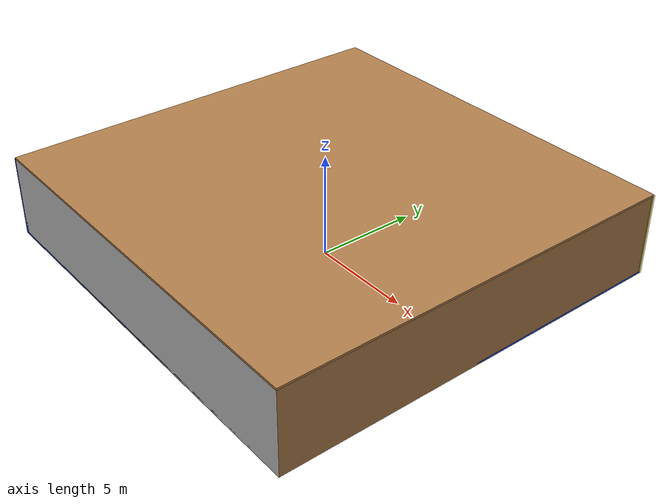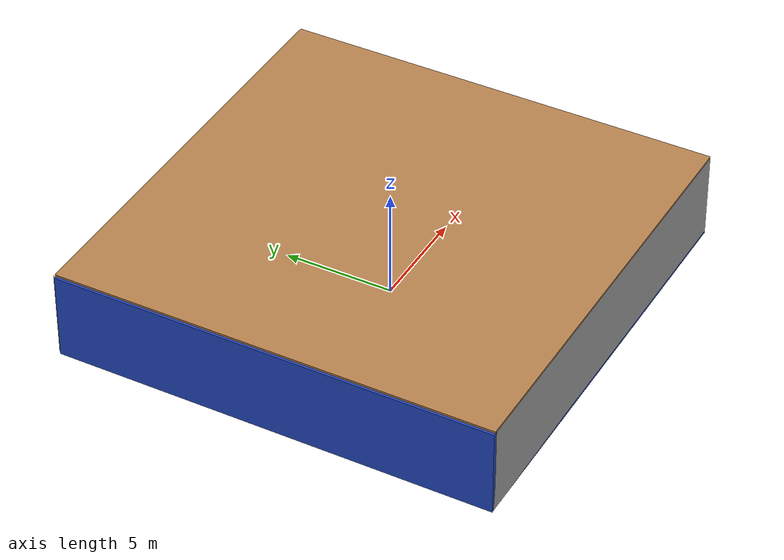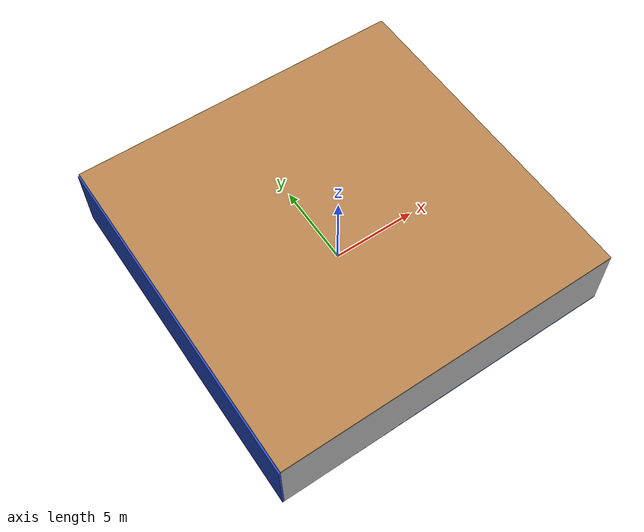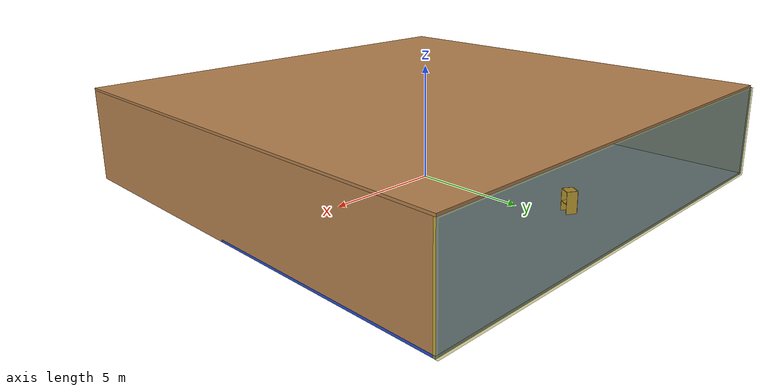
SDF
<sdf version="1.4">
 <world name="default">
  <physics type="ode">
   <max_step_size>0.001</max_step_size>
   <real_time_factor>1</real_time_factor>
   <real_time_update_rate>1000</real_time_update_rate>
   <gravity>0 0 -9.8</gravity>
  </physics>
  <scene><ambient>0.4 0.4 0.4 1</ambient><background>0.7 0.7 0.7 1</background><shadows>1</shadows></scene>
  <model name="Surrounding">
   <static>1</static>
   <link name="Ceiling">
    <collision name="Ceiling_Collision"><geometry><box><size>20 20 0.1</size></box></geometry></collision>
    <visual name="Ceiling_Visual">
     <geometry><box><size>20 20 0.1</size></box></geometry>
     <material>
      <script><uri>file://media/materials/scripts/gazebo.material</uri><name>Gazebo/WoodFloor</name></script>
     </material>
    </visual>
    <pose>0 0 4.05 0 0 0</pose>
   </link>
   <link name="Wall_South">
    <collision name="Wall_South_Collision">
     <geometry><box><size>20 0 4</size></box></geometry>
     <pose>0 0 2 0 -0 0</pose>
    </collision>
    <visual name="Wall_South_Visual">
     <pose>0 0 2 0 -0 0</pose>
     <geometry><box><size>20 0 4</size></box></geometry>
     <material>
      <script><uri>file://media/materials/scripts/gazebo.material</uri><name>Gazebo/LightOn</name></script>
     </material>
    </visual>
    <velocity_decay><linear>0</linear><angular>0</angular></velocity_decay>
    <pose>0 -10 0 0 -0 0</pose>
   </link>
   <link name="Wall_East">
    <collision name="Wall_21_Collision">
     <geometry><box><size>20 0 4</size></box></geometry>
     <pose>0 0 2 0 -0 0</pose>
    </collision>
    <visual name="Wall_21_Visual">
     <pose>0 0 2 0 -0 0</pose>
     <geometry><box><size>20 0 4</size></box></geometry>
     <material>
      <script><uri>file://media/materials/scripts/gazebo.material</uri><name>Gazebo/WoodPallet</name></script>
     </material>
    </visual>
    <velocity_decay><linear>0</linear><angular>0</angular></velocity_decay>
    <pose>10 0 0 0 -0 1.5708</pose>
   </link>
   <link name="Wall_North">
    <collision name="Wall_22_Collision">
     <geometry><box><size>20 0.2 4</size></box></geometry>
     <pose>0 0 2 0 -0 0</pose>
    </collision>
    <visual name="Wall_22_Visual">
     <pose>0 0 2 0 -0 0</pose>
     <geometry><box><size>20 0.2 4</size></box></geometry>
     <material>
      <script>
       <uri>file://media/materials/scripts/gazebo.material</uri>
       <name>Gazebo/YellowTransparent</name>
      </script>
     </material>
    </visual>
    <velocity_decay><linear>0</linear><angular>0</angular></velocity_decay>
    <pose>0 10 0 0 -0 0</pose>
   </link>
   <link name="Wall_West">
    <collision name="Wall_23_Collision">
     <geometry><box><size>20 0.2 4</size></box></geometry>
     <pose>0 0 2 0 -0 0</pose>
    </collision>
    <visual name="Wall_23_Visual">
     <pose>0 0 2 0 -0 0</pose>
     <geometry><box><size>20 0.2 4</size></box></geometry>
     <material>
      <script><uri>file://media/materials/scripts/gazebo.material</uri><name>Gazebo/BlueLaser</name></script>
     </material>
    </visual>
    <velocity_decay><linear>0</linear><angular>0</angular></velocity_decay>
    <pose>-10 0 0 0 0 -1.5708</pose>
   </link>
   <link name="Ground_link">
    <collision name="collision">
     <pose>0 0 .05 0 -0 0</pose>
     <geometry><box><size>20 20 0.1</size></box></geometry>
    </collision>
    <visual name="visual">
     <pose>0 0 .05 0 -0 0</pose>
     <geometry><box><size>20 20 0.1</size></box></geometry>
     <material>
      <script><uri>file://media/materials/scripts/gazebo.material</uri><name>Gazebo/Blue</name></script>
     </material>
    </visual>
   </link>
   <static>1</static>
  </model>
  <spherical_coordinates>
   <surface_model>EARTH_WGS84</surface_model>
   <latitude_deg>0</latitude_deg>
   <longitude_deg>0</longitude_deg>
   <elevation>0</elevation>
   <heading_deg>0</heading_deg>
  </spherical_coordinates>
  <light name="lightball_0" type="diffuse">
   <diffuse>0.8 0.8 0.8 1</diffuse>
   <specular>0.2 0.2 0.2 1</specular>
   <attenuation>
    <range>100</range>
    <constant>0.7</constant>
    <linear>0.01</linear>
    <quadratic>0.001</quadratic>
   </attenuation>
   <direction>-0.5 0.1 -0.9</direction>
   <pose>7.82040198628 5.0997853012 1.39799474451 0 0 0</pose>
  </light>
  <light name="lightball_1" type="diffuse">
   <diffuse>0.8 0.8 0.8 1</diffuse>
   <specular>0.2 0.2 0.2 1</specular>
   <attenuation>
    <range>100</range>
    <constant>0.7</constant>
    <linear>0.01</linear>
    <quadratic>0.001</quadratic>
   </attenuation>
   <direction>-0.5 0.1 -0.9</direction>
   <pose>3.37415637577 -9.47362480811 2.39657362583 0 0 0</pose>
  </light>
  <light name="lightball_2" type="diffuse">
   <diffuse>0.8 0.8 0.8 1</diffuse>
   <specular>0.2 0.2 0.2 1</specular>
   <attenuation>
    <range>100</range>
    <constant>0.7</constant>
    <linear>0.01</linear>
    <quadratic>0.001</quadratic>
   </attenuation>
   <direction>-0.5 0.1 -0.9</direction>
   <pose>4.05631921946 8.17326193442 3.49013375007 0 0 0</pose>
  </light>
  <light name="lightball_3" type="diffuse">
   <diffuse>0.8 0.8 0.8 1</diffuse>
   <specular>0.2 0.2 0.2 1</specular>
   <attenuation>
    <range>100</range>
    <constant>0.7</constant>
    <linear>0.01</linear>
    <quadratic>0.001</quadratic>
   </attenuation>
   <direction>-0.5 0.1 -0.9</direction>
   <pose>-2.88832593891 1.34501631802 0.943433848146 0 0 0</pose>
  </light>
  <light name="lightball_4" type="diffuse">
   <diffuse>0.8 0.8 0.8 1</diffuse>
   <specular>0.2 0.2 0.2 1</specular>
   <attenuation>
    <range>100</range>
    <constant>0.7</constant>
    <linear>0.01</linear>
    <quadratic>0.001</quadratic>
   </attenuation>
   <direction>-0.5 0.1 -0.9</direction>
   <pose>-2.27123497824 -4.96074535405 1.46884039494 0 0 0</pose>
  </light>
  <light name="lightball_5" type="diffuse">
   <diffuse>0.8 0.8 0.8 1</diffuse>
   <specular>0.2 0.2 0.2 1</specular>
   <attenuation>
    <range>100</range>
    <constant>0.7</constant>
    <linear>0.01</linear>
    <quadratic>0.001</quadratic>
   </attenuation>
   <direction>-0.5 0.1 -0.9</direction>
   <pose>0.531985224738 6.72646652003 0.878693578647 0 0 0</pose>
  </light>
  <light name="lightball_6" type="diffuse">
   <diffuse>0.8 0.8 0.8 1</diffuse>
   <specular>0.2 0.2 0.2 1</specular>
   <attenuation>
    <range>100</range>
    <constant>0.7</constant>
    <linear>0.01</linear>
    <quadratic>0.001</quadratic>
   </attenuation>
   <direction>-0.5 0.1 -0.9</direction>
   <pose>-4.27765054908 3.39958266538 1.55656792101 0 0 0</pose>
  </light>
  <light name="lightball_7" type="diffuse">
   <diffuse>0.8 0.8 0.8 1</diffuse>
   <specular>0.2 0.2 0.2 1</specular>
   <attenuation>
    <range>100</range>
    <constant>0.7</constant>
    <linear>0.01</linear>
    <quadratic>0.001</quadratic>
   </attenuation>
   <direction>-0.5 0.1 -0.9</direction>
   <pose>5.96153026871 -9.98062341777 0.849986049636 0 0 0</pose>
  </light>
  <light name="lightball_8" type="diffuse">
   <diffuse>0.8 0.8 0.8 1</diffuse>
   <specular>0.2 0.2 0.2 1</specular>
   <attenuation>
    <range>100</range>
    <constant>0.7</constant>
    <linear>0.01</linear>
    <quadratic>0.001</quadratic>
   </attenuation>
   <direction>-0.5 0.1 -0.9</direction>
   <pose>2.47729082593 4.980864068 2.58791521015 0 0 0</pose>
  </light>
  <light name="lightball_9" type="diffuse">
   <diffuse>0.8 0.8 0.8 1</diffuse>
   <specular>0.2 0.2 0.2 1</specular>
   <attenuation>
    <range>100</range>
    <constant>0.7</constant>
    <linear>0.01</linear>
    <quadratic>0.001</quadratic>
   </attenuation>
   <direction>-0.5 0.1 -0.9</direction>
   <pose>-7.39775136212 3.60275280047 2.79319492064 0 0 0</pose>
  </light>
  <light name="lightball_10" type="diffuse">
   <diffuse>0.8 0.8 0.8 1</diffuse>
   <specular>0.2 0.2 0.2 1</specular>
   <attenuation>
    <range>100</range>
    <constant>0.7</constant>
    <linear>0.01</linear>
    <quadratic>0.001</quadratic>
   </attenuation>
   <direction>-0.5 0.1 -0.9</direction>
   <pose>6.34162175936 1.15210031573 1.30530068303 0 0 0</pose>
  </light>
  <light name="lightball_11" type="diffuse">
   <diffuse>0.8 0.8 0.8 1</diffuse>
   <specular>0.2 0.2 0.2 1</specular>
   <attenuation>
    <range>100</range>
    <constant>0.7</constant>
    <linear>0.01</linear>
    <quadratic>0.001</quadratic>
   </attenuation>
   <direction>-0.5 0.1 -0.9</direction>
   <pose>-5.7167247983 6.28093835261 2.57435443521 0 0 0</pose>
  </light>
  <include>
   <uri>model://robocup_3Dsim_goal</uri>
   <pose>-6.69090245114 -7.8946372977 0 0 0 2.73383754116</pose>
  </include>
  <include><uri>model://cabinet</uri><pose>-0.704932289093 7.03622603673 0 0 0 2.59837538083</pose></include>
  <include>
   <uri>model://textured_shapes</uri>
   <pose>0.383699696396 -6.42506741628 0 0 0 1.39144872946</pose>
  </include>
  <include>
   <uri>model://construction_cone</uri>
   <pose>1.10362721183 -4.84087528664 0 0 0 2.29899054575</pose>
  </include>
  <include>
   <uri>model://textured_shapes</uri>
   <pose>7.11619925216 -4.2880513961 0 0 0 2.25361451329</pose>
  </include>
  <include><uri>model://cabinet</uri><pose>7.45203197757 -1.72708865706 0 0 0 2.69649284057</pose></include>
  <include><uri>model://cabinet</uri><pose>7.03427359474 1.31030261355 0 0 0 2.28539084544</pose></include>
 </world>
</sdf>

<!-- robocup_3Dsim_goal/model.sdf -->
<sdf version="1.5">
  <model name="robocup_3d_goal">
    <static>true</static>
    <link name="left_post">
      <pose>0 1.05 0.45 0 0 0</pose>
      <collision name="collision">
        <geometry>
          <cylinder>
            <radius>0.05</radius>
            <length>0.9</length>
          </cylinder>
        </geometry>
      </collision>
      <visual name="visual">
        <geometry>
          <cylinder>
            <radius>0.05</radius>
            <length>0.9</length>
          </cylinder>
        </geometry>
        <material>
          <script>
            <uri>file://media/materials/scripts/gazebo.material</uri>
            <name>Gazebo/ZincYellow</name>
          </script>
        </material>
      </visual>
    </link>
    <link name="left_support_horiz_lower">
      <pose>0.30 1.05 0.01 0 0 0</pose>
      <collision name="collision">
        <geometry>
          <box>
            <size>0.50 0.02 0.02</size>
          </box>
        </geometry>
      </collision>
      <visual name="visual">
        <geometry>
          <box>
            <size>0.50 0.02 0.02</size>
          </box>
        </geometry>
        <material>
          <script>
            <uri>file://media/materials/scripts/gazebo.material</uri>
            <name>Gazebo/White</name>
          </script>
        </material>
      </visual>
    </link>
    <link name="left_support_horiz_upper">
      <pose>0.30 1.05 0.79 0 0 0</pose>
      <collision name="collision">
        <geometry>
          <box>
            <size>0.50 0.02 0.02</size>
          </box>
        </geometry>
      </collision>
      <visual name="visual">
        <geometry>
          <box>
            <size>0.50 0.02 0.02</size>
          </box>
        </geometry>
        <material>
          <script>
            <uri>file://media/materials/scripts/gazebo.material</uri>
            <name>Gazebo/White</name>
          </script>
        </material>
      </visual>
    </link>
    <link name="left_support_vertical">
      <pose>0.56 1.05 0.4 0 1.5708 0</pose>
      <collision name="collision">
        <geometry>
          <box>
            <size>0.80 0.02 0.02</size>
          </box>
        </geometry>
      </collision>
      <visual name="visual">
        <geometry>
          <box>
            <size>0.80 0.02 0.02</size>
          </box>
        </geometry>
        <material>
          <script>
            <uri>file://media/materials/scripts/gazebo.material</uri>
            <name>Gazebo/White</name>
          </script>
        </material>
      </visual>
    </link>
    <link name="right_support_horiz_lower">
      <pose>0.30 -1.05 0.01 0 0 0</pose>
      <collision name="collision">
        <geometry>
          <box>
            <size>0.50 0.02 0.02</size>
          </box>
        </geometry>
      </collision>
      <visual name="visual">
        <geometry>
          <box>
            <size>0.50 0.02 0.02</size>
          </box>
        </geometry>
        <material>
          <script>
            <uri>file://media/materials/scripts/gazebo.material</uri>
            <name>Gazebo/White</name>
          </script>
        </material>
      </visual>
    </link>
    <link name="right_support_horiz_upper">
      <pose>0.30 -1.05 0.79 0 0 0</pose>
      <collision name="collision">
        <geometry>
          <box>
            <size>0.50 0.02 0.02</size>
          </box>
        </geometry>
      </collision>
      <visual name="visual">
        <geometry>
          <box>
            <size>0.50 0.02 0.02</size>
          </box>
        </geometry>
        <material>
          <script>
            <uri>file://media/materials/scripts/gazebo.material</uri>
            <name>Gazebo/White</name>
          </script>
        </material>
      </visual>
    </link>
    <link name="right_support_vertical">
      <pose>0.56 -1.05 0.4 0 1.5708 0</pose>
      <collision name="collision">
        <geometry>
          <box>
            <size>0.80 0.02 0.02</size>
          </box>
        </geometry>
      </collision>
      <visual name="visual">
        <geometry>
          <box>
            <size>0.80 0.02 0.02</size>
          </box>
        </geometry>
        <material>
          <script>
            <uri>file://media/materials/scripts/gazebo.material</uri>
            <name>Gazebo/White</name>
          </script>
        </material>
      </visual>
    </link>
    <link name="center_support_horiz_lower">
      <pose>0.56 0 0.01 0 1.5708 0</pose>
      <collision name="collision">
        <geometry>
          <box>
            <size>0.02 2.08 0.02</size>
          </box>
        </geometry>
      </collision>
      <visual name="visual">
        <geometry>
          <box>
            <size>0.02 2.08 0.02</size>
          </box>
        </geometry>
        <material>
          <script>
            <uri>file://media/materials/scripts/gazebo.material</uri>
            <name>Gazebo/White</name>
          </script>
        </material>
      </visual>
    </link>
    <link name="center_support_horiz_upper">
      <pose>0.56 0 0.79 0 1.5708 0</pose>
      <collision name="collision">
        <geometry>
          <box>
            <size>0.02 2.08 0.02</size>
          </box>
        </geometry>
      </collision>
      <visual name="visual">
        <geometry>
          <box>
            <size>0.02 2.08 0.02</size>
          </box>
        </geometry>
        <material>
          <script>
            <uri>file://media/materials/scripts/gazebo.material</uri>
            <name>Gazebo/White</name>
          </script>
        </material>
      </visual>
    </link>
    <link name="right_post">
      <pose>0 -1.05 0.45 0 0 0</pose>
      <collision name="collision">
        <geometry>
          <cylinder>
            <radius>0.05</radius>
            <length>0.9</length>
          </cylinder>
        </geometry>
      </collision>
      <visual name="visual">
        <geometry>
          <cylinder>
            <radius>0.05</radius>
            <length>0.9</length>
          </cylinder>
        </geometry>
        <material>
          <script>
            <uri>file://media/materials/scripts/gazebo.material</uri>
            <name>Gazebo/ZincYellow</name>
          </script>
        </material>
      </visual>
    </link>
    <link name="crossbar">
      <pose>0 0 0.85 1.57 1.57 0</pose>
      <collision name="collision">
        <geometry>
          <cylinder>
            <radius>0.05</radius>
            <length>2.0</length>
          </cylinder>
        </geometry>
      </collision>
      <visual name="visual">
        <geometry>
          <cylinder>
            <radius>0.05</radius>
            <length>2.0</length>
          </cylinder>
        </geometry>
        <material>
          <script>
            <uri>file://media/materials/scripts/gazebo.material</uri>
            <name>Gazebo/ZincYellow</name>
          </script>
        </material>
      </visual>
    </link>
    <link name="center_net">
      <pose>0.56 0 0.40 0 0 0</pose>
      <collision name="collision">
        <geometry>
          <box>
            <size>0.01 2.1 0.80</size>
          </box>
        </geometry>
      </collision>
      <visual name="visual">
        <geometry>
          <box>
            <size>0.01 2.1 0.80</size>
          </box>
        </geometry>
        <material>
          <script>
            <uri>model://../model_source/models/robocup09_spl_field/materials/scripts/</uri>
            <uri>model://../model_source/models/robocup09_spl_field/materials/textures/</uri>
            <name>RoboCup/Net</name>
          </script>
        </material>
      </visual>
    </link>
    <link name="left_net">
      <pose>0.30 1.05 0.40 0 0 0</pose>
      <collision name="collision">
        <geometry>
          <box>
            <size>0.50 0.01 0.76</size>
          </box>
        </geometry>
      </collision>
      <visual name="visual">
        <geometry>
          <box>
            <size>0.50 0.01 0.76</size>
          </box>
        </geometry>
        <material>
          <script>
            <uri>model://../model_source/models/robocup09_spl_field/materials/scripts/</uri>
            <uri>model://../model_source/models/robocup09_spl_field/materials/textures/</uri>
            <name>RoboCup/Net</name>
          </script>
        </material>
      </visual>
    </link>
    <link name="right_net">
      <pose>0.30 -1.05 0.40 0 0 0</pose>
      <collision name="collision">
        <geometry>
          <box>
            <size>0.50 0.01 0.76</size>
          </box>
        </geometry>
      </collision>
      <visual name="visual">
        <geometry>
          <box>
            <size>0.50 0.01 0.76</size>
          </box>
        </geometry>
        <material>
          <script>
            <uri>model://../model_source/models/robocup09_spl_field/materials/scripts/</uri>
            <uri>model://../model_source/models/robocup09_spl_field/materials/textures/</uri>
            <name>RoboCup/Net</name>
          </script>
        </material>
      </visual>
    </link>
  </model>
</sdf>

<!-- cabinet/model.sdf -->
<sdf version="1.5">
  <model name="cabinet">
    <static>true</static>
    <link name="cabinet_bottom_plate">
      <inertial>
        <pose>0 0 -1 0 0 0</pose>
        <inertia>
          <ixx>2.050000</ixx>
          <ixy>0</ixy>
          <ixz>0</ixz>
          <iyy>2.050000</iyy>
          <iyz>0</iyz>
          <izz>2.050000</izz>
        </inertia>
        <mass>25.000000</mass>
      </inertial>
      <collision name="cabinet_bottom_plate_geom">
        <pose>0 0 0.010000 0 0 0</pose>
        <geometry>
          <box>
            <size>0.450000 0.450000 0.020000</size>
          </box>
        </geometry>
      </collision>
      <visual name="cabinet_bottom_plate_geom_visual">
        <pose>0 0 0.010000 0 0 0</pose>
        <geometry>
          <box>
            <size>0.450000 0.450000 0.020000</size>
          </box>
        </geometry>
        <material>
          <script>
            <uri>model://media/materials/scripts/gazebo.material</uri>
            <name>Gazebo/Wood</name>
          </script>
        </material>
      </visual>
      <collision name="cabinet_bottom_plate_geom_cabinet_back_plate">
        <pose>0.235000 0 0.510000 0 0 0</pose>
        <geometry>
          <box>
            <size>0.020000 0.450000 1.020000</size>
          </box>
        </geometry>
      </collision>
      <visual name="cabinet_bottom_plate_geom_cabinet_back_plate_visual">
        <pose>0.235000 0 0.510000 0 0 0</pose>
        <geometry>
          <box>
            <size>0.020000 0.450000 1.020000</size>
          </box>
        </geometry>
        <material>
          <script>
            <uri>model://media/materials/scripts/gazebo.material</uri>
            <name>Gazebo/Wood</name>
          </script>
        </material>
      </visual>
      <collision name="cabinet_bottom_plate_geom_cabinet_left_plate">
        <pose>0 0.235000 0.510000 0 0 0</pose>
        <geometry>
          <box>
            <size>0.450000 0.020000 1.020000</size>
          </box>
        </geometry>
      </collision>
      <visual name="cabinet_bottom_plate_geom_cabinet_left_plate_visual">
        <pose>0 0.235000 0.510000 0 0 0</pose>
        <geometry>
          <box>
            <size>0.450000 0.020000 1.020000</size>
          </box>
        </geometry>
        <material>
          <script>
            <uri>model://media/materials/scripts/gazebo.material</uri>
            <name>Gazebo/Wood</name>
          </script>
        </material>
      </visual>
      <collision name="cabinet_bottom_plate_geom_cabinet_middle_plate">
        <pose>0 0 0.510000 0 0 0</pose>
        <geometry>
          <box>
            <size>0.450000 0.450000 0.020000</size>
          </box>
        </geometry>
      </collision>
      <visual name="cabinet_bottom_plate_geom_cabinet_middle_plate_visual">
        <pose>0 0 0.510000 0 0 0</pose>
        <geometry>
          <box>
            <size>0.450000 0.450000 0.020000</size>
          </box>
        </geometry>
        <material>
          <script>
            <uri>model://media/materials/scripts/gazebo.material</uri>
            <name>Gazebo/Wood</name>
          </script>
        </material>
      </visual>
      <collision name="cabinet_bottom_plate_geom_cabinet_right_plate">
        <pose>0 -0.235000 0.510000 0 0 0</pose>
        <geometry>
          <box>
            <size>0.450000 0.020000 1.020000</size>
          </box>
        </geometry>
      </collision>
      <visual name="cabinet_bottom_plate_geom_cabinet_right_plate_visual">
        <pose>0 -0.235000 0.510000 0 0 0</pose>
        <geometry>
          <box>
            <size>0.450000 0.020000 1.020000</size>
          </box>
        </geometry>
        <material>
          <script>
            <uri>model://media/materials/scripts/gazebo.material</uri>
            <name>Gazebo/Wood</name>
          </script>
        </material>
      </visual>
      <collision name="cabinet_bottom_plate_geom_cabinet_top_plate">
        <pose>0 0 1.010000 0 0 0</pose>
        <geometry>
          <box>
            <size>0.450000 0.450000 0.020000</size>
          </box>
        </geometry>
      </collision>
      <visual name="cabinet_bottom_plate_geom_cabinet_top_plate_visual">
        <pose>0 0 1.010000 0 0 0</pose>
        <geometry>
          <box>
            <size>0.450000 0.450000 0.020000</size>
          </box>
        </geometry>
        <material>
          <script>
            <uri>model://media/materials/scripts/gazebo.material</uri>
            <name>Gazebo/Wood</name>
          </script>
        </material>
      </visual>
    </link>
  </model>
</sdf>

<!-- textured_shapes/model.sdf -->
<sdf version="1.6">
  <model name="textured_shapes">
    <pose>0 0 0.5 0 0 0</pose>
    <link name="box">
      <pose>0 -1.5 0 0 0 0</pose>
      <collision name="collision">
        <geometry>
          <box>
            <size>1 1 1</size>
          </box>
        </geometry>
      </collision>
      <visual name="visual">
        <geometry>
          <box>
            <size>1 1 1</size>
          </box>
        </geometry>
        <material>
          <script>
            <uri>model://../model_source/models/textured_shapes/materials/scripts</uri>
            <uri>model://../model_source/models/textured_shapes/materials/textures</uri>
            <name>TexturedShape/Squares</name>
          </script>
        </material>
      </visual>
    </link>
    <link name="sphere">
      <collision name="collision">
        <geometry>
          <sphere>
            <radius>0.5</radius>
          </sphere>
        </geometry>
      </collision>
      <visual name="visual">
        <geometry>
          <sphere>
            <radius>0.5</radius>
          </sphere>
        </geometry>
        <material>
          <script>
            <uri>model://../model_source/models/textured_shapes/materials/scripts</uri>
            <uri>model://../model_source/models/textured_shapes/materials/textures</uri>
            <name>TexturedShape/Squares</name>
          </script>
        </material>
      </visual>
    </link>
    <link name="cylinder">
      <pose>0 1.5 0 0 0 0</pose>
      <collision name="collision">
        <geometry>
          <cylinder>
            <radius>0.5</radius>
            <length>1</length>
          </cylinder>
        </geometry>
      </collision>
      <visual name="visual">
        <geometry>
          <cylinder>
            <radius>0.5</radius>
            <length>1</length>
          </cylinder>
        </geometry>
        <material>
          <script>
            <uri>model://../model_source/models/textured_shapes/materials/scripts</uri>
            <uri>model://../model_source/models/textured_shapes/materials/textures</uri>
            <name>TexturedShape/Squares</name>
          </script>
        </material>
      </visual>
    </link>
  </model>
</sdf>

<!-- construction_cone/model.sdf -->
<sdf version="1.5">
  <model name="Construction Cone">
    <link name="link">
      <collision name="collision">
        <geometry>
          <mesh>
            <scale>10 10 10</scale>
            <uri>file://isr-testbed/construction_cone/meshes/construction_cone.dae</uri>
          </mesh>
        </geometry>
      </collision>
      <visual name="visual">
        <geometry>
          <mesh>
            <scale>10 10 10</scale>
            <uri>file://isr-testbed/construction_cone/meshes/construction_cone.dae</uri>
          </mesh>
        </geometry>
      </visual>
    </link>
  </model>
</sdf>
